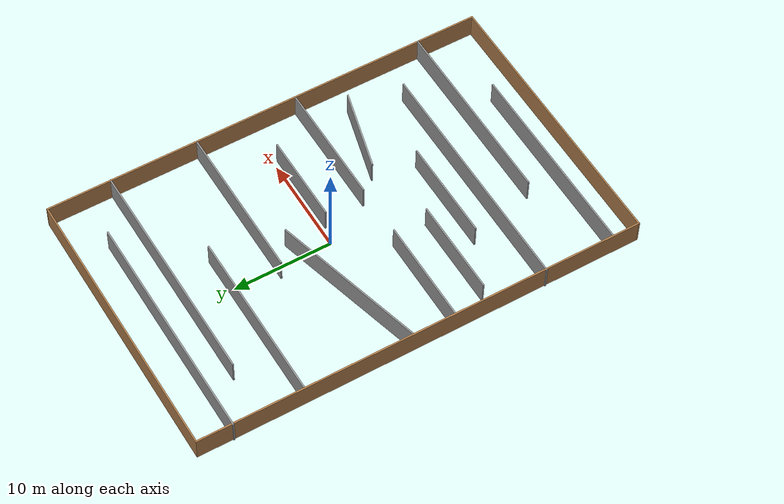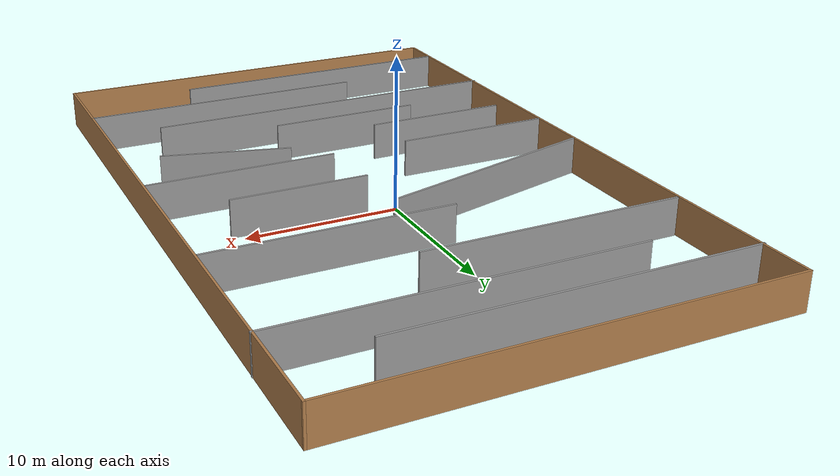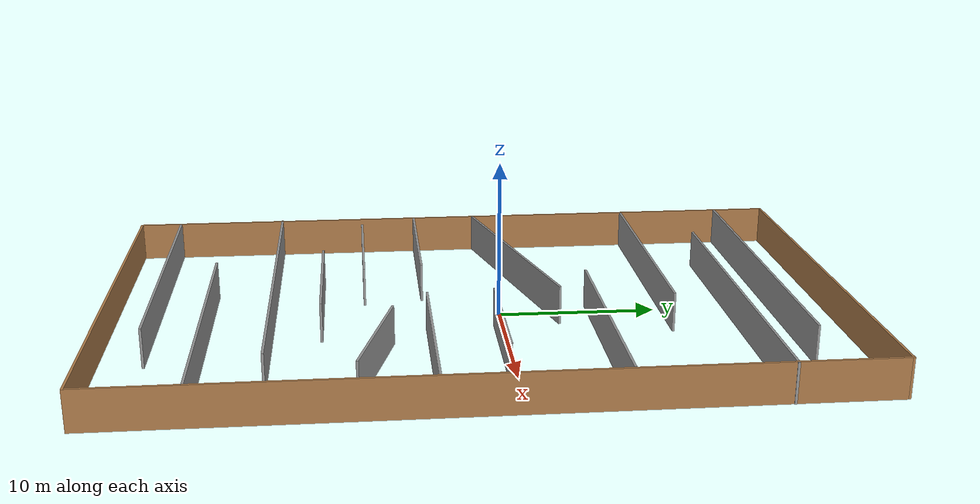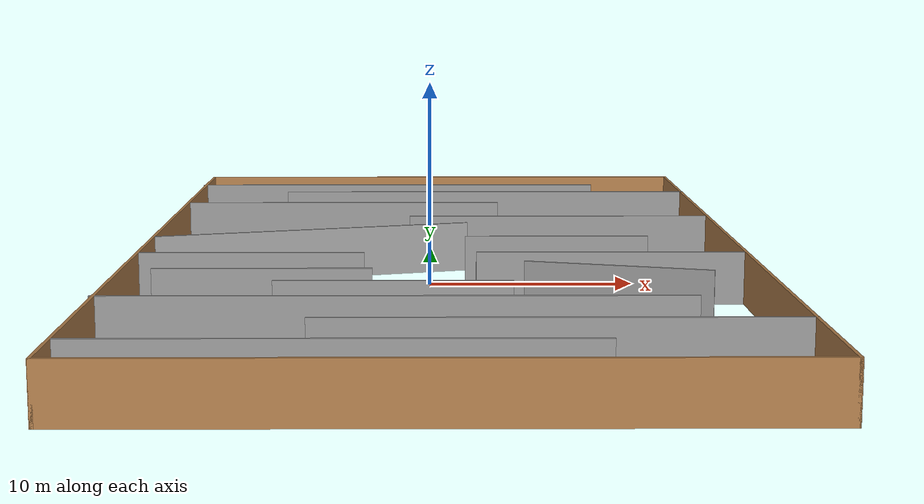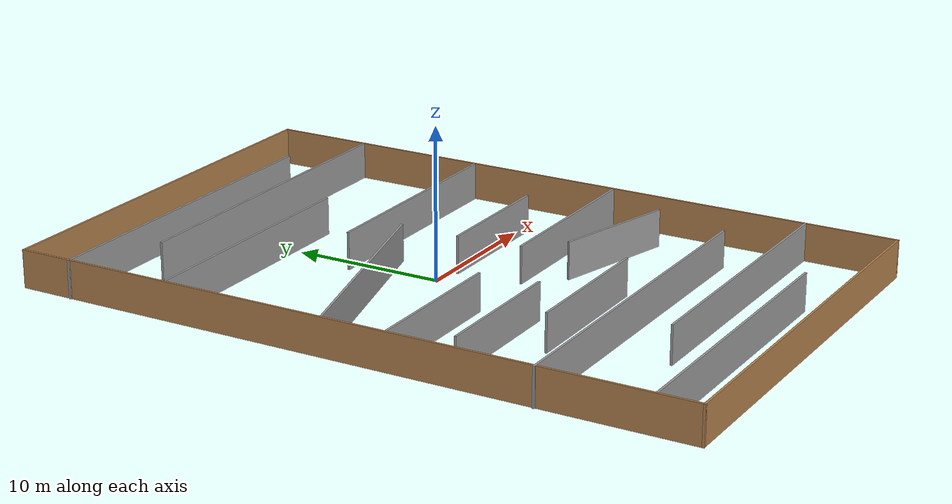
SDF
<?xml version='1.0'?>
<sdf version='1.7'>
  <model name='multi_curves'>
    <pose>0.554822 -1.58444 0 0 -0 0</pose>
    <link name='Wall_0'>
      <collision name='Wall_0_Collision'>
        <geometry>
          <box>
            <size>45.5 0.15 2.5</size>
          </box>
        </geometry>
        <pose>0 0 1.25 0 -0 0</pose>
      </collision>
      <visual name='Wall_0_Visual'>
        <pose>0 0 1.25 0 -0 0</pose>
        <geometry>
          <box>
            <size>45.5 0.15 2.5</size>
          </box>
        </geometry>
        <material>
          <script>
            <uri>file://media/materials/scripts/gazebo.material</uri>
            <name>Gazebo/Wood</name>
          </script>
          <ambient>1 1 1 1</ambient>
        </material>
        <meta>
          <layer>0</layer>
        </meta>
      </visual>
      <pose>-14.1437 -0 0 0 -0 1.5708</pose>
    </link>
    <link name='Wall_10'>
      <collision name='Wall_10_Collision'>
        <geometry>
          <box>
            <size>23.25 0.15 2.5</size>
          </box>
        </geometry>
        <pose>0 0 1.25 0 -0 0</pose>
      </collision>
      <visual name='Wall_10_Visual'>
        <pose>0 0 1.25 0 -0 0</pose>
        <geometry>
          <box>
            <size>23.25 0.15 2.5</size>
          </box>
        </geometry>
        <material>
          <script>
            <uri>file://media/materials/scripts/gazebo.material</uri>
            <name>Gazebo/Grey</name>
          </script>
          <ambient>1 1 1 1</ambient>
        </material>
        <meta>
          <layer>0</layer>
        </meta>
      </visual>
      <pose>2.68877 16.2392 0 0 -0 0</pose>
    </link>
    <link name='Wall_12'>
      <collision name='Wall_12_Collision'>
        <geometry>
          <box>
            <size>17.25 0.15 2.5</size>
          </box>
        </geometry>
        <pose>0 0 1.25 0 -0 0</pose>
      </collision>
      <visual name='Wall_12_Visual'>
        <pose>0 0 1.25 0 -0 0</pose>
        <geometry>
          <box>
            <size>17.25 0.15 2.5</size>
          </box>
        </geometry>
        <material>
          <script>
            <uri>file://media/materials/scripts/gazebo.material</uri>
            <name>Gazebo/Grey</name>
          </script>
          <ambient>1 1 1 1</ambient>
        </material>
        <meta>
          <layer>0</layer>
        </meta>
      </visual>
      <pose>-5.40574 12.0646 0 0 -0 0</pose>
    </link>
    <link name='Wall_14'>
      <collision name='Wall_14_Collision'>
        <geometry>
          <box>
            <size>15.75 0.15 2.5</size>
          </box>
        </geometry>
        <pose>0 0 1.25 0 -0 0</pose>
      </collision>
      <visual name='Wall_14_Visual'>
        <pose>0 0 1.25 0 -0 0</pose>
        <geometry>
          <box>
            <size>15.75 0.15 2.5</size>
          </box>
        </geometry>
        <material>
          <script>
            <uri>file://media/materials/scripts/gazebo.material</uri>
            <name>Gazebo/Grey</name>
          </script>
          <ambient>1 1 1 1</ambient>
        </material>
        <meta>
          <layer>0</layer>
        </meta>
      </visual>
      <pose>6.22675 7.32383 0 0 -0 0</pose>
    </link>
    <link name='Wall_17'>
      <collision name='Wall_17_Collision'>
        <geometry>
          <box>
            <size>16 0.15 2.5</size>
          </box>
        </geometry>
        <pose>0 0 1.25 0 -0 0</pose>
      </collision>
      <visual name='Wall_17_Visual'>
        <pose>0 0 1.25 0 -0 0</pose>
        <geometry>
          <box>
            <size>16 0.15 2.5</size>
          </box>
        </geometry>
        <material>
          <script>
            <uri>file://media/materials/scripts/gazebo.material</uri>
            <name>Gazebo/Grey</name>
          </script>
          <ambient>1 1 1 1</ambient>
        </material>
        <meta>
          <layer>0</layer>
        </meta>
      </visual>
      <pose>-6.37153 3.14835 0 0 -0 0.261799</pose>
    </link>
    <link name='Wall_19'>
      <collision name='Wall_19_Collision'>
        <geometry>
          <box>
            <size>9 0.15 2.5</size>
          </box>
        </geometry>
        <pose>0 0 1.25 0 -0 0</pose>
      </collision>
      <visual name='Wall_19_Visual'>
        <pose>0 0 1.25 0 -0 0</pose>
        <geometry>
          <box>
            <size>9 0.15 2.5</size>
          </box>
        </geometry>
        <material>
          <script>
            <uri>file://media/materials/scripts/gazebo.material</uri>
            <name>Gazebo/Grey</name>
          </script>
          <ambient>1 1 1 1</ambient>
        </material>
        <meta>
          <layer>0</layer>
        </meta>
      </visual>
      <pose>5.67666 1.09721 0 0 -0 3.14159</pose>
    </link>
    <link name='Wall_21'>
      <collision name='Wall_21_Collision'>
        <geometry>
          <box>
            <size>10.5 0.15 2.5</size>
          </box>
        </geometry>
        <pose>0 0 1.25 0 -0 0</pose>
      </collision>
      <visual name='Wall_21_Visual'>
        <pose>0 0 1.25 0 -0 0</pose>
        <geometry>
          <box>
            <size>10.5 0.15 2.5</size>
          </box>
        </geometry>
        <material>
          <script>
            <uri>file://media/materials/scripts/gazebo.material</uri>
            <name>Gazebo/Grey</name>
          </script>
          <ambient>1 1 1 1</ambient>
        </material>
        <meta>
          <layer>0</layer>
        </meta>
      </visual>
      <pose>-8.8515 -3.21897 0 0 -0 0</pose>
    </link>
    <link name='Wall_23'>
      <collision name='Wall_23_Collision'>
        <geometry>
          <box>
            <size>12.5 0.15 2.5</size>
          </box>
        </geometry>
        <pose>0 0 1.25 0 -0 0</pose>
      </collision>
      <visual name='Wall_23_Visual'>
        <pose>0 0 1.25 0 -0 0</pose>
        <geometry>
          <box>
            <size>12.5 0.15 2.5</size>
          </box>
        </geometry>
        <material>
          <script>
            <uri>file://media/materials/scripts/gazebo.material</uri>
            <name>Gazebo/Grey</name>
          </script>
          <ambient>1 1 1 1</ambient>
        </material>
        <meta>
          <layer>0</layer>
        </meta>
      </visual>
      <pose>7.85657 -3.14821 0 0 -0 0</pose>
    </link>
    <link name='Wall_25'>
      <collision name='Wall_25_Collision'>
        <geometry>
          <box>
            <size>9.75 0.15 2.5</size>
          </box>
        </geometry>
        <pose>0 0 1.25 0 -0 0</pose>
      </collision>
      <visual name='Wall_25_Visual'>
        <pose>0 0 1.25 0 -0 0</pose>
        <geometry>
          <box>
            <size>9.75 0.15 2.5</size>
          </box>
        </geometry>
        <material>
          <script>
            <uri>file://media/materials/scripts/gazebo.material</uri>
            <name>Gazebo/Grey</name>
          </script>
          <ambient>1 1 1 1</ambient>
        </material>
        <meta>
          <layer>0</layer>
        </meta>
      </visual>
      <pose>-7.95287 -6.96909 0 0 -0 0</pose>
    </link>
    <link name='Wall_27'>
      <collision name='Wall_27_Collision'>
        <geometry>
          <box>
            <size>10.25 0.15 2.5</size>
          </box>
        </geometry>
        <pose>0 0 1.25 0 -0 0</pose>
      </collision>
      <visual name='Wall_27_Visual'>
        <pose>0 0 1.25 0 -0 0</pose>
        <geometry>
          <box>
            <size>10.25 0.15 2.5</size>
          </box>
        </geometry>
        <material>
          <script>
            <uri>file://media/materials/scripts/gazebo.material</uri>
            <name>Gazebo/Grey</name>
          </script>
          <ambient>1 1 1 1</ambient>
        </material>
        <meta>
          <layer>0</layer>
        </meta>
      </visual>
      <pose>-2.0948 -9.65786 0 0 -0 3.14159</pose>
    </link>
    <link name='Wall_29'>
      <collision name='Wall_29_Collision'>
        <geometry>
          <box>
            <size>8.5 0.15 2.5</size>
          </box>
        </geometry>
        <pose>0 0 1.25 0 -0 0</pose>
      </collision>
      <visual name='Wall_29_Visual'>
        <pose>0 0 1.25 0 -0 0</pose>
        <geometry>
          <box>
            <size>8.5 0.15 2.5</size>
          </box>
        </geometry>
        <material>
          <script>
            <uri>file://media/materials/scripts/gazebo.material</uri>
            <name>Gazebo/Grey</name>
          </script>
          <ambient>1 1 1 1</ambient>
        </material>
        <meta>
          <layer>0</layer>
        </meta>
      </visual>
      <pose>7.83702 -6.42225 0 0 -0 -0.261799</pose>
    </link>
    <link name='Wall_3'>
      <collision name='Wall_3_Collision'>
        <geometry>
          <box>
            <size>28.5 0.15 2.5</size>
          </box>
        </geometry>
        <pose>0 0 1.25 0 -0 0</pose>
      </collision>
      <visual name='Wall_3_Visual'>
        <pose>0 0 1.25 0 -0 0</pose>
        <geometry>
          <box>
            <size>28.5 0.15 2.5</size>
          </box>
        </geometry>
        <material>
          <script>
            <uri>file://media/materials/scripts/gazebo.material</uri>
            <name>Gazebo/Wood</name>
          </script>
          <ambient>1 1 1 1</ambient>
        </material>
        <meta>
          <layer>0</layer>
        </meta>
      </visual>
      <pose>0.031273 -22.675 0 0 -0 0</pose>
    </link>
    <link name='Wall_31'>
      <collision name='Wall_31_Collision'>
        <geometry>
          <box>
            <size>24.75 0.15 2.5</size>
          </box>
        </geometry>
        <pose>0 0 1.25 0 -0 0</pose>
      </collision>
      <visual name='Wall_31_Visual'>
        <pose>0 0 1.25 0 -0 0</pose>
        <geometry>
          <box>
            <size>24.75 0.15 2.5</size>
          </box>
        </geometry>
        <material>
          <script>
            <uri>file://media/materials/scripts/gazebo.material</uri>
            <name>Gazebo/Grey</name>
          </script>
          <ambient>1 1 1 1</ambient>
        </material>
        <meta>
          <layer>0</layer>
        </meta>
      </visual>
      <pose>-1.93877 -12.7004 0 0 -0 0</pose>
    </link>
    <link name='Wall_33'>
      <collision name='Wall_33_Collision'>
        <geometry>
          <box>
            <size>19.5 0.15 2.5</size>
          </box>
        </geometry>
        <pose>0 0 1.25 0 -0 0</pose>
      </collision>
      <visual name='Wall_33_Visual'>
        <pose>0 0 1.25 0 -0 0</pose>
        <geometry>
          <box>
            <size>19.5 0.15 2.5</size>
          </box>
        </geometry>
        <material>
          <script>
            <uri>file://media/materials/scripts/gazebo.material</uri>
            <name>Gazebo/Grey</name>
          </script>
          <ambient>1 1 1 1</ambient>
        </material>
        <meta>
          <layer>0</layer>
        </meta>
      </visual>
      <pose>4.49313 -16.5921 0 0 -0 0</pose>
    </link>
    <link name='Wall_35'>
      <collision name='Wall_35_Collision'>
        <geometry>
          <box>
            <size>20.25 0.15 2.5</size>
          </box>
        </geometry>
        <pose>0 0 1.25 0 -0 0</pose>
      </collision>
      <visual name='Wall_35_Visual'>
        <pose>0 0 1.25 0 -0 0</pose>
        <geometry>
          <box>
            <size>20.25 0.15 2.5</size>
          </box>
        </geometry>
        <material>
          <script>
            <uri>file://media/materials/scripts/gazebo.material</uri>
            <name>Gazebo/Grey</name>
          </script>
          <ambient>1 1 1 1</ambient>
        </material>
        <meta>
          <layer>0</layer>
        </meta>
      </visual>
      <pose>-3.9765 -19.9176 0 0 -0 0</pose>
    </link>
    <link name='Wall_4'>
      <collision name='Wall_4_Collision'>
        <geometry>
          <box>
            <size>45.5 0.15 2.5</size>
          </box>
        </geometry>
        <pose>0 0 1.25 0 -0 0</pose>
      </collision>
      <visual name='Wall_4_Visual'>
        <pose>0 0 1.25 0 -0 0</pose>
        <geometry>
          <box>
            <size>45.5 0.15 2.5</size>
          </box>
        </geometry>
        <material>
          <script>
            <uri>file://media/materials/scripts/gazebo.material</uri>
            <name>Gazebo/Wood</name>
          </script>
          <ambient>1 1 1 1</ambient>
        </material>
        <meta>
          <layer>0</layer>
        </meta>
      </visual>
      <pose>14.2063 -0 0 0 -0 1.5708</pose>
    </link>
    <link name='Wall_5'>
      <collision name='Wall_5_Collision'>
        <geometry>
          <box>
            <size>28.5 0.15 2.5</size>
          </box>
        </geometry>
        <pose>0 0 1.25 0 -0 0</pose>
      </collision>
      <visual name='Wall_5_Visual'>
        <pose>0 0 1.25 0 -0 0</pose>
        <geometry>
          <box>
            <size>28.5 0.15 2.5</size>
          </box>
        </geometry>
        <material>
          <script>
            <uri>file://media/materials/scripts/gazebo.material</uri>
            <name>Gazebo/Wood</name>
          </script>
          <ambient>1 1 1 1</ambient>
        </material>
        <meta>
          <layer>0</layer>
        </meta>
      </visual>
      <pose>0.031273 22.675 0 0 -0 3.14159</pose>
    </link>
    <link name='Wall_8'>
      <collision name='Wall_8_Collision'>
        <geometry>
          <box>
            <size>23.5 0.15 2.5</size>
          </box>
        </geometry>
        <pose>0 0 1.25 0 -0 0</pose>
      </collision>
      <visual name='Wall_8_Visual'>
        <pose>0 0 1.25 0 -0 0</pose>
        <geometry>
          <box>
            <size>23.5 0.15 2.5</size>
          </box>
        </geometry>
        <material>
          <script>
            <uri>file://media/materials/scripts/gazebo.material</uri>
            <name>Gazebo/Grey</name>
          </script>
          <ambient>1 1 1 1</ambient>
        </material>
        <meta>
          <layer>0</layer>
        </meta>
      </visual>
      <pose>-2.56377 19.1403 0 0 -0 0</pose>
    </link>
    <static>1</static>
  </model>
</sdf>
